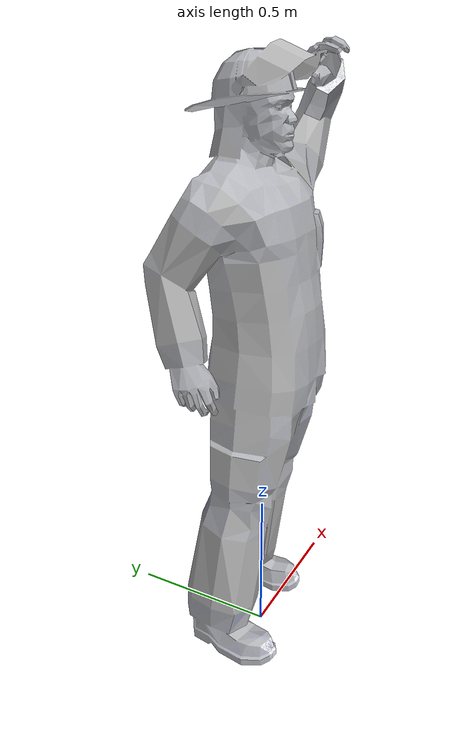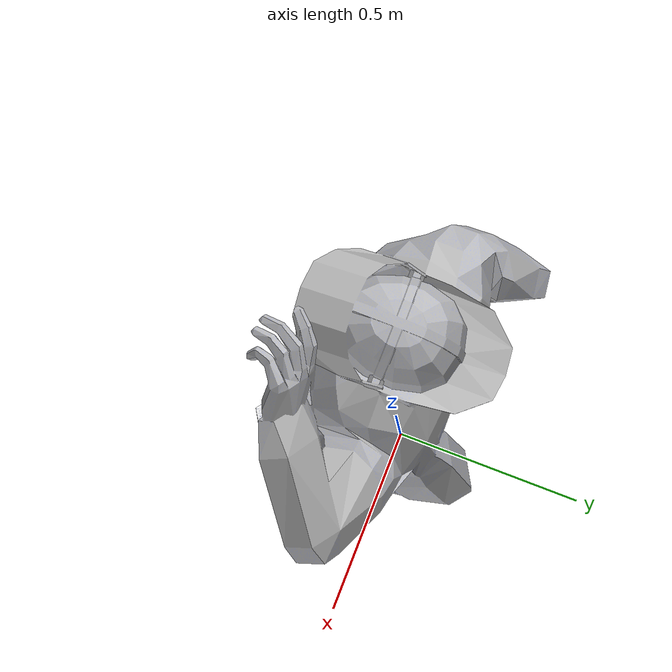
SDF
<?xml version="1.0"?>
<sdf version="1.6">
   <model name="fireman1">
      <static>false</static>
      <link name="fireman1">
	<gravity>1</gravity>

	<pose>0 0 0.1 0 0 0</pose>
	<collision name="collision">
	  <geometry>
	     <mesh>
		<uri>model://fireman1/meshes/model.dae</uri>
	     </mesh>
	  </geometry>
	</collision>
	<visual name="visual">
	  <geometry>
	     <mesh>
		<uri>model://fireman1/meshes/model.dae</uri>
  	     </mesh>
	  </geometry>
	</visual>
      </link>
   </model>
</sdf>
